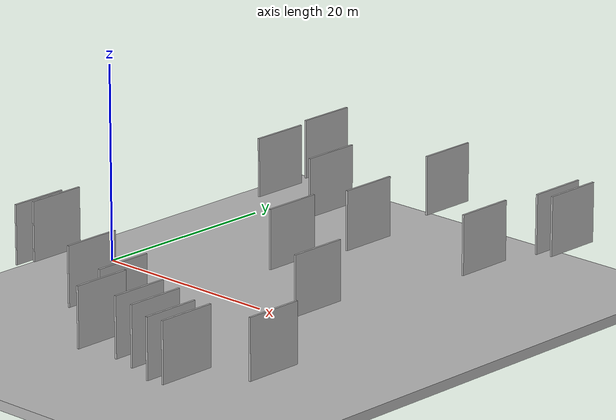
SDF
<?xml version="1.0" encoding="utf-8"?>

<sdf version="1.6">

   <world name="default">

      <gui fullscreen="0">

         <camera name="user_camera">

            <pose>-15 0 4.57585 0 0 0</pose>

            <view_controller>orbit</view_controller>

         </camera>

      </gui>

      <scene>

         <sky>

           <clouds>

             <speed>12</speed>

           </clouds>

         </sky>

         <ambient>0.4 0.4 0.4 1</ambient>

         <background>0.7 0.7 0.7 1</background>

         <shadows>1</shadows>

      </scene>

      <gravity>0 0 -9.8066</gravity>

      <magnetic_field>6e-06 2.3e-05 -4.2e-05</magnetic_field>

      <physics default="0" name="default_physics" type="ode">

         <ode>

            <solver>

               <type>quick</type>

               <iters>10</iters>

               <sor>1.0</sor>

               <use_dynamic_moi_rescaling>0</use_dynamic_moi_rescaling>

            </solver>

            <constraints>

               <cfm>0</cfm>

               <erp>0.2</erp>

               <contact_max_correcting_vel>100</contact_max_correcting_vel>

               <contact_surface_layer>0.001</contact_surface_layer>

            </constraints>

         </ode>

         <max_step_size>0.004</max_step_size>

         <real_time_factor>1</real_time_factor>

         <real_time_update_rate>250</real_time_update_rate>

      </physics>

      <light name="sun" type="directional">

         <cast_shadows>1</cast_shadows>

         <pose>0 0 10 0 0 0</pose>

         <diffuse>0.8 0.8 0.8 1</diffuse>

         <specular>0.2 0.2 0.2 1</specular>

         <attenuation>

            <range>1000</range>

            <constant>0.9</constant>

            <linear>0.01</linear>

            <quadratic>0.001</quadratic>

         </attenuation>

         <direction>-0.5 0.1 -0.9</direction>

      </light>

      <include>

         <name>ground_plane_1</name>

         <uri>model://HANNAS_ground_plane</uri>

         <pose>0 0 0  0 0 0</pose>

      </include>

      <include>

         <name>ground_plane_2</name>

         <uri>model://HANNAS_ground_plane</uri>

         <pose>100 0 0  0 0 0</pose>

      </include>

      <model name="HANNAS_wall_1">

         <static>1</static>

         <pose frame="">23.3188 -21.1912 5.0 0.000000 0.000000 1.570796</pose>

         <link name="link">

            <pose frame="">0 0 3.00 0 0 0</pose>

            <collision name="collision">

               <geometry>

                  <box>

                     <size>6.00 0.2 6.00</size>

                  </box>

               </geometry>

               <max_contacts>10</max_contacts>

               <surface>

                  <contact>

                     <ode/>

                  </contact>

                  <bounce/>

                  <friction>

                     <torsional>

                        <ode/>

                     </torsional>

                     <ode/>

                  </friction>

               </surface>

            </collision>

            <visual name="visual">

               <cast_shadows>0</cast_shadows>

               <geometry>

                  <box>

                     <size>6.00 0.2 6.00</size>

                  </box>

               </geometry>

               <material>

                  <script>

                     <uri>model://HANNAS_wall/materials/scripts</uri>

                     <uri>model://HANNAS_wall/materials/textures</uri>

                     <name>vrc/HANNAS_wall</name>

                  </script>

               </material>

            </visual>

            <self_collide>0</self_collide>

            <enable_wind>0</enable_wind>

            <kinematic>0</kinematic>

         </link>

      </model>

      <model name="HANNAS_wall_2">

         <static>1</static>

         <pose frame="">15.0276 15.0759 5.0 0.000000 0.000000 1.570796</pose>

         <link name="link">

            <pose frame="">0 0 3.00 0 0 0</pose>

            <collision name="collision">

               <geometry>

                  <box>

                     <size>6.00 0.2 6.00</size>

                  </box>

               </geometry>

               <max_contacts>10</max_contacts>

               <surface>

                  <contact>

                     <ode/>

                  </contact>

                  <bounce/>

                  <friction>

                     <torsional>

                        <ode/>

                     </torsional>

                     <ode/>

                  </friction>

               </surface>

            </collision>

            <visual name="visual">

               <cast_shadows>0</cast_shadows>

               <geometry>

                  <box>

                     <size>6.00 0.2 6.00</size>

                  </box>

               </geometry>

               <material>

                  <script>

                     <uri>model://HANNAS_wall/materials/scripts</uri>

                     <uri>model://HANNAS_wall/materials/textures</uri>

                     <name>vrc/HANNAS_wall</name>

                  </script>

               </material>

            </visual>

            <self_collide>0</self_collide>

            <enable_wind>0</enable_wind>

            <kinematic>0</kinematic>

         </link>

      </model>

      <model name="HANNAS_wall_3">

         <static>1</static>

         <pose frame="">35.2843 -26.9873 5.0 0.000000 0.000000 1.570796</pose>

         <link name="link">

            <pose frame="">0 0 3.00 0 0 0</pose>

            <collision name="collision">

               <geometry>

                  <box>

                     <size>6.00 0.2 6.00</size>

                  </box>

               </geometry>

               <max_contacts>10</max_contacts>

               <surface>

                  <contact>

                     <ode/>

                  </contact>

                  <bounce/>

                  <friction>

                     <torsional>

                        <ode/>

                     </torsional>

                     <ode/>

                  </friction>

               </surface>

            </collision>

            <visual name="visual">

               <cast_shadows>0</cast_shadows>

               <geometry>

                  <box>

                     <size>6.00 0.2 6.00</size>

                  </box>

               </geometry>

               <material>

                  <script>

                     <uri>model://HANNAS_wall/materials/scripts</uri>

                     <uri>model://HANNAS_wall/materials/textures</uri>

                     <name>vrc/HANNAS_wall</name>

                  </script>

               </material>

            </visual>

            <self_collide>0</self_collide>

            <enable_wind>0</enable_wind>

            <kinematic>0</kinematic>

         </link>

      </model>

      <model name="HANNAS_wall_4">

         <static>1</static>

         <pose frame="">39.4836 22.5314 5.0 0.000000 0.000000 1.570796</pose>

         <link name="link">

            <pose frame="">0 0 3.00 0 0 0</pose>

            <collision name="collision">

               <geometry>

                  <box>

                     <size>6.00 0.2 6.00</size>

                  </box>

               </geometry>

               <max_contacts>10</max_contacts>

               <surface>

                  <contact>

                     <ode/>

                  </contact>

                  <bounce/>

                  <friction>

                     <torsional>

                        <ode/>

                     </torsional>

                     <ode/>

                  </friction>

               </surface>

            </collision>

            <visual name="visual">

               <cast_shadows>0</cast_shadows>

               <geometry>

                  <box>

                     <size>6.00 0.2 6.00</size>

                  </box>

               </geometry>

               <material>

                  <script>

                     <uri>model://HANNAS_wall/materials/scripts</uri>

                     <uri>model://HANNAS_wall/materials/textures</uri>

                     <name>vrc/HANNAS_wall</name>

                  </script>

               </material>

            </visual>

            <self_collide>0</self_collide>

            <enable_wind>0</enable_wind>

            <kinematic>0</kinematic>

         </link>

      </model>

      <model name="HANNAS_wall_5">

         <static>1</static>

         <pose frame="">32.0697 -25.7265 5.0 0.000000 0.000000 1.570796</pose>

         <link name="link">

            <pose frame="">0 0 3.00 0 0 0</pose>

            <collision name="collision">

               <geometry>

                  <box>

                     <size>6.00 0.2 6.00</size>

                  </box>

               </geometry>

               <max_contacts>10</max_contacts>

               <surface>

                  <contact>

                     <ode/>

                  </contact>

                  <bounce/>

                  <friction>

                     <torsional>

                        <ode/>

                     </torsional>

                     <ode/>

                  </friction>

               </surface>

            </collision>

            <visual name="visual">

               <cast_shadows>0</cast_shadows>

               <geometry>

                  <box>

                     <size>6.00 0.2 6.00</size>

                  </box>

               </geometry>

               <material>

                  <script>

                     <uri>model://HANNAS_wall/materials/scripts</uri>

                     <uri>model://HANNAS_wall/materials/textures</uri>

                     <name>vrc/HANNAS_wall</name>

                  </script>

               </material>

            </visual>

            <self_collide>0</self_collide>

            <enable_wind>0</enable_wind>

            <kinematic>0</kinematic>

         </link>

      </model>

      <model name="HANNAS_wall_6">

         <static>1</static>

         <pose frame="">24.3030 10.4485 5.0 0.000000 0.000000 1.570796</pose>

         <link name="link">

            <pose frame="">0 0 3.00 0 0 0</pose>

            <collision name="collision">

               <geometry>

                  <box>

                     <size>6.00 0.2 6.00</size>

                  </box>

               </geometry>

               <max_contacts>10</max_contacts>

               <surface>

                  <contact>

                     <ode/>

                  </contact>

                  <bounce/>

                  <friction>

                     <torsional>

                        <ode/>

                     </torsional>

                     <ode/>

                  </friction>

               </surface>

            </collision>

            <visual name="visual">

               <cast_shadows>0</cast_shadows>

               <geometry>

                  <box>

                     <size>6.00 0.2 6.00</size>

                  </box>

               </geometry>

               <material>

                  <script>

                     <uri>model://HANNAS_wall/materials/scripts</uri>

                     <uri>model://HANNAS_wall/materials/textures</uri>

                     <name>vrc/HANNAS_wall</name>

                  </script>

               </material>

            </visual>

            <self_collide>0</self_collide>

            <enable_wind>0</enable_wind>

            <kinematic>0</kinematic>

         </link>

      </model>

      <model name="HANNAS_wall_7">

         <static>1</static>

         <pose frame="">4.5854 -13.9679 5.0 0.000000 0.000000 1.570796</pose>

         <link name="link">

            <pose frame="">0 0 3.00 0 0 0</pose>

            <collision name="collision">

               <geometry>

                  <box>

                     <size>6.00 0.2 6.00</size>

                  </box>

               </geometry>

               <max_contacts>10</max_contacts>

               <surface>

                  <contact>

                     <ode/>

                  </contact>

                  <bounce/>

                  <friction>

                     <torsional>

                        <ode/>

                     </torsional>

                     <ode/>

                  </friction>

               </surface>

            </collision>

            <visual name="visual">

               <cast_shadows>0</cast_shadows>

               <geometry>

                  <box>

                     <size>6.00 0.2 6.00</size>

                  </box>

               </geometry>

               <material>

                  <script>

                     <uri>model://HANNAS_wall/materials/scripts</uri>

                     <uri>model://HANNAS_wall/materials/textures</uri>

                     <name>vrc/HANNAS_wall</name>

                  </script>

               </material>

            </visual>

            <self_collide>0</self_collide>

            <enable_wind>0</enable_wind>

            <kinematic>0</kinematic>

         </link>

      </model>

      <model name="HANNAS_wall_8">

         <static>1</static>

         <pose frame="">16.6071 -18.6587 5.0 0.000000 0.000000 1.570796</pose>

         <link name="link">

            <pose frame="">0 0 3.00 0 0 0</pose>

            <collision name="collision">

               <geometry>

                  <box>

                     <size>6.00 0.2 6.00</size>

                  </box>

               </geometry>

               <max_contacts>10</max_contacts>

               <surface>

                  <contact>

                     <ode/>

                  </contact>

                  <bounce/>

                  <friction>

                     <torsional>

                        <ode/>

                     </torsional>

                     <ode/>

                  </friction>

               </surface>

            </collision>

            <visual name="visual">

               <cast_shadows>0</cast_shadows>

               <geometry>

                  <box>

                     <size>6.00 0.2 6.00</size>

                  </box>

               </geometry>

               <material>

                  <script>

                     <uri>model://HANNAS_wall/materials/scripts</uri>

                     <uri>model://HANNAS_wall/materials/textures</uri>

                     <name>vrc/HANNAS_wall</name>

                  </script>

               </material>

            </visual>

            <self_collide>0</self_collide>

            <enable_wind>0</enable_wind>

            <kinematic>0</kinematic>

         </link>

      </model>

      <model name="HANNAS_wall_9">

         <static>1</static>

         <pose frame="">22.7639 23.3991 5.0 0.000000 0.000000 1.570796</pose>

         <link name="link">

            <pose frame="">0 0 3.00 0 0 0</pose>

            <collision name="collision">

               <geometry>

                  <box>

                     <size>6.00 0.2 6.00</size>

                  </box>

               </geometry>

               <max_contacts>10</max_contacts>

               <surface>

                  <contact>

                     <ode/>

                  </contact>

                  <bounce/>

                  <friction>

                     <torsional>

                        <ode/>

                     </torsional>

                     <ode/>

                  </friction>

               </surface>

            </collision>

            <visual name="visual">

               <cast_shadows>0</cast_shadows>

               <geometry>

                  <box>

                     <size>6.00 0.2 6.00</size>

                  </box>

               </geometry>

               <material>

                  <script>

                     <uri>model://HANNAS_wall/materials/scripts</uri>

                     <uri>model://HANNAS_wall/materials/textures</uri>

                     <name>vrc/HANNAS_wall</name>

                  </script>

               </material>

            </visual>

            <self_collide>0</self_collide>

            <enable_wind>0</enable_wind>

            <kinematic>0</kinematic>

         </link>

      </model>

      <model name="HANNAS_wall_10">

         <static>1</static>

         <pose frame="">5.1077 -12.2120 5.0 0.000000 0.000000 1.570796</pose>

         <link name="link">

            <pose frame="">0 0 3.00 0 0 0</pose>

            <collision name="collision">

               <geometry>

                  <box>

                     <size>6.00 0.2 6.00</size>

                  </box>

               </geometry>

               <max_contacts>10</max_contacts>

               <surface>

                  <contact>

                     <ode/>

                  </contact>

                  <bounce/>

                  <friction>

                     <torsional>

                        <ode/>

                     </torsional>

                     <ode/>

                  </friction>

               </surface>

            </collision>

            <visual name="visual">

               <cast_shadows>0</cast_shadows>

               <geometry>

                  <box>

                     <size>6.00 0.2 6.00</size>

                  </box>

               </geometry>

               <material>

                  <script>

                     <uri>model://HANNAS_wall/materials/scripts</uri>

                     <uri>model://HANNAS_wall/materials/textures</uri>

                     <name>vrc/HANNAS_wall</name>

                  </script>

               </material>

            </visual>

            <self_collide>0</self_collide>

            <enable_wind>0</enable_wind>

            <kinematic>0</kinematic>

         </link>

      </model>

      <model name="HANNAS_wall_11">

         <static>1</static>

         <pose frame="">38.0508 22.0143 5.0 0.000000 0.000000 1.570796</pose>

         <link name="link">

            <pose frame="">0 0 3.00 0 0 0</pose>

            <collision name="collision">

               <geometry>

                  <box>

                     <size>6.00 0.2 6.00</size>

                  </box>

               </geometry>

               <max_contacts>10</max_contacts>

               <surface>

                  <contact>

                     <ode/>

                  </contact>

                  <bounce/>

                  <friction>

                     <torsional>

                        <ode/>

                     </torsional>

                     <ode/>

                  </friction>

               </surface>

            </collision>

            <visual name="visual">

               <cast_shadows>0</cast_shadows>

               <geometry>

                  <box>

                     <size>6.00 0.2 6.00</size>

                  </box>

               </geometry>

               <material>

                  <script>

                     <uri>model://HANNAS_wall/materials/scripts</uri>

                     <uri>model://HANNAS_wall/materials/textures</uri>

                     <name>vrc/HANNAS_wall</name>

                  </script>

               </material>

            </visual>

            <self_collide>0</self_collide>

            <enable_wind>0</enable_wind>

            <kinematic>0</kinematic>

         </link>

      </model>

      <model name="HANNAS_wall_12">

         <static>1</static>

         <pose frame="">36.9819 -26.7322 5.0 0.000000 0.000000 1.570796</pose>

         <link name="link">

            <pose frame="">0 0 3.00 0 0 0</pose>

            <collision name="collision">

               <geometry>

                  <box>

                     <size>6.00 0.2 6.00</size>

                  </box>

               </geometry>

               <max_contacts>10</max_contacts>

               <surface>

                  <contact>

                     <ode/>

                  </contact>

                  <bounce/>

                  <friction>

                     <torsional>

                        <ode/>

                     </torsional>

                     <ode/>

                  </friction>

               </surface>

            </collision>

            <visual name="visual">

               <cast_shadows>0</cast_shadows>

               <geometry>

                  <box>

                     <size>6.00 0.2 6.00</size>

                  </box>

               </geometry>

               <material>

                  <script>

                     <uri>model://HANNAS_wall/materials/scripts</uri>

                     <uri>model://HANNAS_wall/materials/textures</uri>

                     <name>vrc/HANNAS_wall</name>

                  </script>

               </material>

            </visual>

            <self_collide>0</self_collide>

            <enable_wind>0</enable_wind>

            <kinematic>0</kinematic>

         </link>

      </model>

      <model name="HANNAS_wall_13">

         <static>1</static>

         <pose frame="">6.4068 23.5687 5.0 0.000000 0.000000 1.570796</pose>

         <link name="link">

            <pose frame="">0 0 3.00 0 0 0</pose>

            <collision name="collision">

               <geometry>

                  <box>

                     <size>6.00 0.2 6.00</size>

                  </box>

               </geometry>

               <max_contacts>10</max_contacts>

               <surface>

                  <contact>

                     <ode/>

                  </contact>

                  <bounce/>

                  <friction>

                     <torsional>

                        <ode/>

                     </torsional>

                     <ode/>

                  </friction>

               </surface>

            </collision>

            <visual name="visual">

               <cast_shadows>0</cast_shadows>

               <geometry>

                  <box>

                     <size>6.00 0.2 6.00</size>

                  </box>

               </geometry>

               <material>

                  <script>

                     <uri>model://HANNAS_wall/materials/scripts</uri>

                     <uri>model://HANNAS_wall/materials/textures</uri>

                     <name>vrc/HANNAS_wall</name>

                  </script>

               </material>

            </visual>

            <self_collide>0</self_collide>

            <enable_wind>0</enable_wind>

            <kinematic>0</kinematic>

         </link>

      </model>

      <model name="HANNAS_wall_14">

         <static>1</static>

         <pose frame="">25.1080 -25.6219 5.0 0.000000 0.000000 1.570796</pose>

         <link name="link">

            <pose frame="">0 0 3.00 0 0 0</pose>

            <collision name="collision">

               <geometry>

                  <box>

                     <size>6.00 0.2 6.00</size>

                  </box>

               </geometry>

               <max_contacts>10</max_contacts>

               <surface>

                  <contact>

                     <ode/>

                  </contact>

                  <bounce/>

                  <friction>

                     <torsional>

                        <ode/>

                     </torsional>

                     <ode/>

                  </friction>

               </surface>

            </collision>

            <visual name="visual">

               <cast_shadows>0</cast_shadows>

               <geometry>

                  <box>

                     <size>6.00 0.2 6.00</size>

                  </box>

               </geometry>

               <material>

                  <script>

                     <uri>model://HANNAS_wall/materials/scripts</uri>

                     <uri>model://HANNAS_wall/materials/textures</uri>

                     <name>vrc/HANNAS_wall</name>

                  </script>

               </material>

            </visual>

            <self_collide>0</self_collide>

            <enable_wind>0</enable_wind>

            <kinematic>0</kinematic>

         </link>

      </model>

      <model name="HANNAS_wall_15">

         <static>1</static>

         <pose frame="">36.9970 12.7743 5.0 0.000000 0.000000 1.570796</pose>

         <link name="link">

            <pose frame="">0 0 3.00 0 0 0</pose>

            <collision name="collision">

               <geometry>

                  <box>

                     <size>6.00 0.2 6.00</size>

                  </box>

               </geometry>

               <max_contacts>10</max_contacts>

               <surface>

                  <contact>

                     <ode/>

                  </contact>

                  <bounce/>

                  <friction>

                     <torsional>

                        <ode/>

                     </torsional>

                     <ode/>

                  </friction>

               </surface>

            </collision>

            <visual name="visual">

               <cast_shadows>0</cast_shadows>

               <geometry>

                  <box>

                     <size>6.00 0.2 6.00</size>

                  </box>

               </geometry>

               <material>

                  <script>

                     <uri>model://HANNAS_wall/materials/scripts</uri>

                     <uri>model://HANNAS_wall/materials/textures</uri>

                     <name>vrc/HANNAS_wall</name>

                  </script>

               </material>

            </visual>

            <self_collide>0</self_collide>

            <enable_wind>0</enable_wind>

            <kinematic>0</kinematic>

         </link>

      </model>

      <model name="HANNAS_wall_16">

         <static>1</static>

         <pose frame="">7.1022 16.2112 5.0 0.000000 0.000000 1.570796</pose>

         <link name="link">

            <pose frame="">0 0 3.00 0 0 0</pose>

            <collision name="collision">

               <geometry>

                  <box>

                     <size>6.00 0.2 6.00</size>

                  </box>

               </geometry>

               <max_contacts>10</max_contacts>

               <surface>

                  <contact>

                     <ode/>

                  </contact>

                  <bounce/>

                  <friction>

                     <torsional>

                        <ode/>

                     </torsional>

                     <ode/>

                  </friction>

               </surface>

            </collision>

            <visual name="visual">

               <cast_shadows>0</cast_shadows>

               <geometry>

                  <box>

                     <size>6.00 0.2 6.00</size>

                  </box>

               </geometry>

               <material>

                  <script>

                     <uri>model://HANNAS_wall/materials/scripts</uri>

                     <uri>model://HANNAS_wall/materials/textures</uri>

                     <name>vrc/HANNAS_wall</name>

                  </script>

               </material>

            </visual>

            <self_collide>0</self_collide>

            <enable_wind>0</enable_wind>

            <kinematic>0</kinematic>

         </link>

      </model>

      <model name="HANNAS_wall_17">

         <static>1</static>

         <pose frame="">33.4078 -6.1704 5.0 0.000000 0.000000 1.570796</pose>

         <link name="link">

            <pose frame="">0 0 3.00 0 0 0</pose>

            <collision name="collision">

               <geometry>

                  <box>

                     <size>6.00 0.2 6.00</size>

                  </box>

               </geometry>

               <max_contacts>10</max_contacts>

               <surface>

                  <contact>

                     <ode/>

                  </contact>

                  <bounce/>

                  <friction>

                     <torsional>

                        <ode/>

                     </torsional>

                     <ode/>

                  </friction>

               </surface>

            </collision>

            <visual name="visual">

               <cast_shadows>0</cast_shadows>

               <geometry>

                  <box>

                     <size>6.00 0.2 6.00</size>

                  </box>

               </geometry>

               <material>

                  <script>

                     <uri>model://HANNAS_wall/materials/scripts</uri>

                     <uri>model://HANNAS_wall/materials/textures</uri>

                     <name>vrc/HANNAS_wall</name>

                  </script>

               </material>

            </visual>

            <self_collide>0</self_collide>

            <enable_wind>0</enable_wind>

            <kinematic>0</kinematic>

         </link>

      </model>

      <model name="HANNAS_wall_18">

         <static>1</static>

         <pose frame="">41.9638 -20.8687 5.0 0.000000 0.000000 1.570796</pose>

         <link name="link">

            <pose frame="">0 0 3.00 0 0 0</pose>

            <collision name="collision">

               <geometry>

                  <box>

                     <size>6.00 0.2 6.00</size>

                  </box>

               </geometry>

               <max_contacts>10</max_contacts>

               <surface>

                  <contact>

                     <ode/>

                  </contact>

                  <bounce/>

                  <friction>

                     <torsional>

                        <ode/>

                     </torsional>

                     <ode/>

                  </friction>

               </surface>

            </collision>

            <visual name="visual">

               <cast_shadows>0</cast_shadows>

               <geometry>

                  <box>

                     <size>6.00 0.2 6.00</size>

                  </box>

               </geometry>

               <material>

                  <script>

                     <uri>model://HANNAS_wall/materials/scripts</uri>

                     <uri>model://HANNAS_wall/materials/textures</uri>

                     <name>vrc/HANNAS_wall</name>

                  </script>

               </material>

            </visual>

            <self_collide>0</self_collide>

            <enable_wind>0</enable_wind>

            <kinematic>0</kinematic>

         </link>

      </model>

      <model name="HANNAS_wall_19">

         <static>1</static>

         <pose frame="">22.7947 1.5278 5.0 0.000000 0.000000 1.570796</pose>

         <link name="link">

            <pose frame="">0 0 3.00 0 0 0</pose>

            <collision name="collision">

               <geometry>

                  <box>

                     <size>6.00 0.2 6.00</size>

                  </box>

               </geometry>

               <max_contacts>10</max_contacts>

               <surface>

                  <contact>

                     <ode/>

                  </contact>

                  <bounce/>

                  <friction>

                     <torsional>

                        <ode/>

                     </torsional>

                     <ode/>

                  </friction>

               </surface>

            </collision>

            <visual name="visual">

               <cast_shadows>0</cast_shadows>

               <geometry>

                  <box>

                     <size>6.00 0.2 6.00</size>

                  </box>

               </geometry>

               <material>

                  <script>

                     <uri>model://HANNAS_wall/materials/scripts</uri>

                     <uri>model://HANNAS_wall/materials/textures</uri>

                     <name>vrc/HANNAS_wall</name>

                  </script>

               </material>

            </visual>

            <self_collide>0</self_collide>

            <enable_wind>0</enable_wind>

            <kinematic>0</kinematic>

         </link>

      </model>

      <model name="HANNAS_wall_20">

         <static>1</static>

         <pose frame="">29.4041 -25.1002 5.0 0.000000 0.000000 1.570796</pose>

         <link name="link">

            <pose frame="">0 0 3.00 0 0 0</pose>

            <collision name="collision">

               <geometry>

                  <box>

                     <size>6.00 0.2 6.00</size>

                  </box>

               </geometry>

               <max_contacts>10</max_contacts>

               <surface>

                  <contact>

                     <ode/>

                  </contact>

                  <bounce/>

                  <friction>

                     <torsional>

                        <ode/>

                     </torsional>

                     <ode/>

                  </friction>

               </surface>

            </collision>

            <visual name="visual">

               <cast_shadows>0</cast_shadows>

               <geometry>

                  <box>

                     <size>6.00 0.2 6.00</size>

                  </box>

               </geometry>

               <material>

                  <script>

                     <uri>model://HANNAS_wall/materials/scripts</uri>

                     <uri>model://HANNAS_wall/materials/textures</uri>

                     <name>vrc/HANNAS_wall</name>

                  </script>

               </material>

            </visual>

            <self_collide>0</self_collide>

            <enable_wind>0</enable_wind>

            <kinematic>0</kinematic>

         </link>

      </model>

   </world>

</sdf>

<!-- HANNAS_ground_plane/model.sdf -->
<sdf version="1.4">
<model name="HANNAS_ground_plane">
  <static>true</static>
    <link name="link">
      <collision name="collision">
        <geometry>
          <plane>
            <normal>0 0 1</normal>
            <size>1000 1000</size>
          </plane>
        </geometry>
        <surface>
          <friction>
            <ode>
              <mu>100</mu>
              <mu2>50</mu2>
            </ode>
          </friction>
        </surface>
      </collision>
      <visual name="visual">
        <cast_shadows>false</cast_shadows>
        <geometry>
          <plane>
            <normal>0 0 1</normal>
            <size>1000 1000</size>
          </plane>
        </geometry>
        <material>
          <script>
            <uri>model://HANNAS_ground_plane/materials/scripts/HANNAS_ground_plane.material</uri>
	    <uri>model://HANNAS_ground_plane/materials/textures</uri>
            <name>HANNASGroundPlane/Image</name>
          </script>
        </material>
      </visual>
    </link>
  </model>
</sdf>
